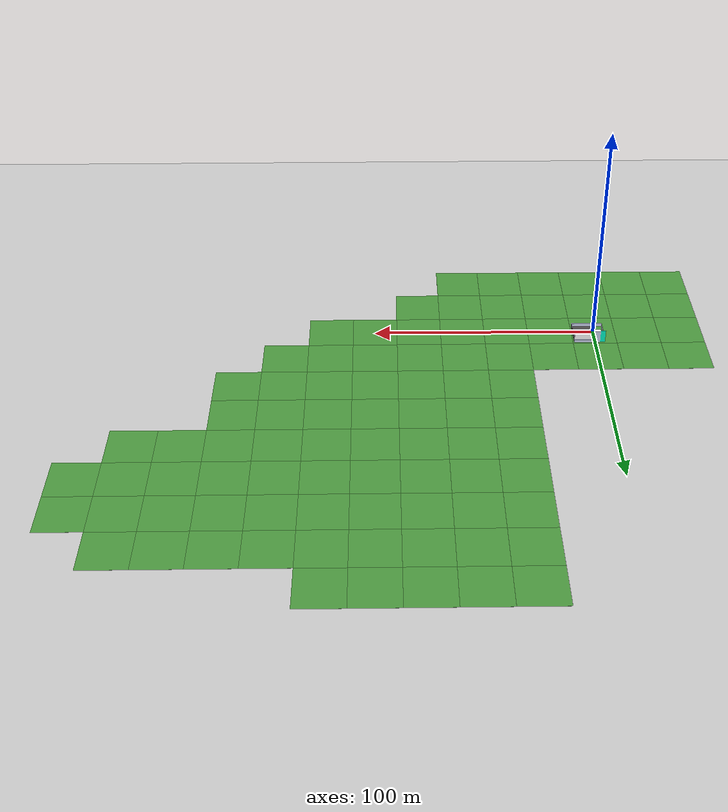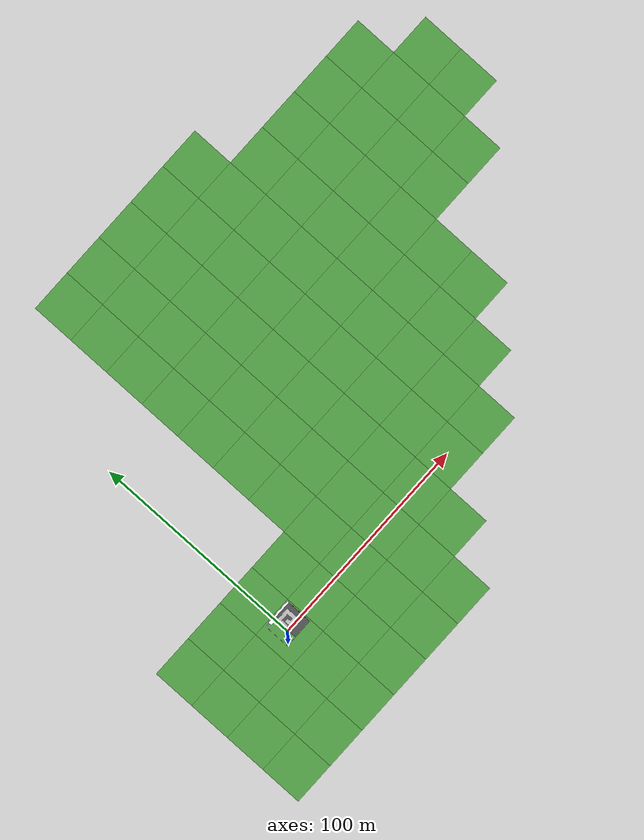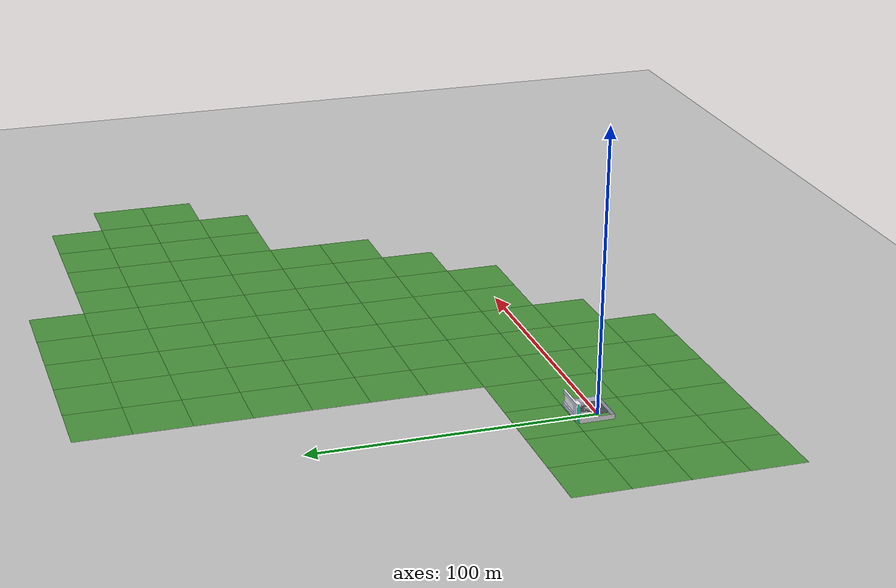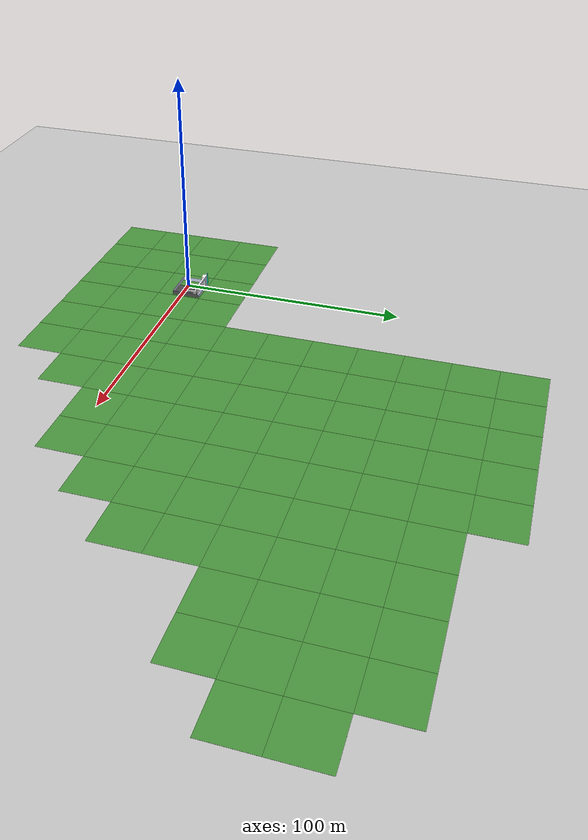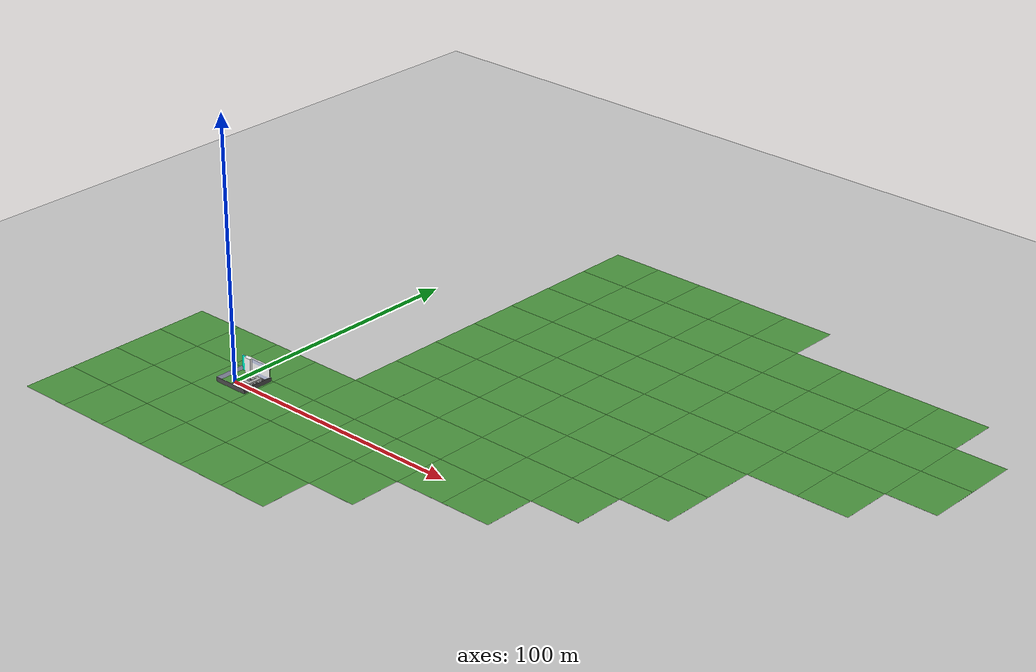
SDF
<?xml version="1.0" ?>
<sdf version="1.4">

  <world name="default">
    <scene>
	<sky>
	  <clouds>
	    <speed>12</speed>
	  </clouds>
	</sky>
    </scene>

    <include>
      <uri>model://ground_plane</uri>
    </include>

    <include>
      <uri>model://grass_plane</uri>
      <name>grass_plane_0_0</name>
      <pose>0 -1 0   0 0 0</pose>
    </include>

    <!-- Global light source -->
    <include>
      <uri>model://sun</uri>
    </include>
    <include>
            <uri>model://field_description</uri>
    </include>
  </world>
</sdf>

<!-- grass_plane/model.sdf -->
<sdf version='1.4'>
  <model name='grass_plane'>
    <static>true</static>
    <link name='link'>
      <collision name='collision'>
        <geometry>
          <plane>
            <normal>0 0 1</normal>
            <size>500 500</size>
          </plane>
        </geometry>
        <surface>
          <friction>
            <ode>
              <mu>0.5</mu>
              <mu2>.5</mu2>
            </ode>
          </friction>
        </surface>
      </collision>

      <visual name='visual_0'>
        <pose>-40 -40 0 0 0 0</pose>

        <cast_shadows>false</cast_shadows>
        <geometry>
          <plane>
            <normal>0 0 1</normal>
            <size>20 20</size>
          </plane>
        </geometry>
        <material>
          <script>
            <uri>model://../model_source/models/grass_plane/materials/scripts</uri>
            <uri>model://../model_source/models/grass_plane/materials/textures</uri>
            <name>vrc/grass</name>
          </script>
        </material>
      </visual>

      <visual name='visual_1'>
        <pose>-20 -40 0 0 0 0</pose>

        <cast_shadows>false</cast_shadows>
        <geometry>
          <plane>
            <normal>0 0 1</normal>
            <size>20 20</size>
          </plane>
        </geometry>
        <material>
          <script>
            <uri>model://../model_source/models/grass_plane/materials/scripts</uri>
            <uri>model://../model_source/models/grass_plane/materials/textures</uri>
            <name>vrc/grass</name>
          </script>
        </material>
      </visual>

      <visual name='visual_2'>
        <pose>0 -40 0 0 0 0</pose>

        <cast_shadows>false</cast_shadows>
        <geometry>
          <plane>
            <normal>0 0 1</normal>
            <size>20 20</size>
          </plane>
        </geometry>
        <material>
          <script>
            <uri>model://../model_source/models/grass_plane/materials/scripts</uri>
            <uri>model://../model_source/models/grass_plane/materials/textures</uri>
            <name>vrc/grass</name>
          </script>
        </material>
      </visual>

      <visual name='visual_3'>
        <pose>20 -40 0 0 0 0</pose>

        <cast_shadows>false</cast_shadows>
        <geometry>
          <plane>
            <normal>0 0 1</normal>
            <size>20 20</size>
          </plane>
        </geometry>
        <material>
          <script>
            <uri>model://../model_source/models/grass_plane/materials/scripts</uri>
            <uri>model://../model_source/models/grass_plane/materials/textures</uri>
            <name>vrc/grass</name>
          </script>
        </material>
      </visual>

      <visual name='visual_4'>
        <pose>40 -40 0 0 0 0</pose>

        <cast_shadows>false</cast_shadows>
        <geometry>
          <plane>
            <normal>0 0 1</normal>
            <size>20 20</size>
          </plane>
        </geometry>
        <material>
          <script>
            <uri>model://../model_source/models/grass_plane/materials/scripts</uri>
            <uri>model://../model_source/models/grass_plane/materials/textures</uri>
            <name>vrc/grass</name>
          </script>
        </material>
      </visual>

      <visual name='visual_5'>
        <pose>60 -40 0 0 0 0</pose>

        <cast_shadows>false</cast_shadows>
        <geometry>
          <plane>
            <normal>0 0 1</normal>
            <size>20 20</size>
          </plane>
        </geometry>
        <material>
          <script>
            <uri>model://../model_source/models/grass_plane/materials/scripts</uri>
            <uri>model://../model_source/models/grass_plane/materials/textures</uri>
            <name>vrc/grass</name>
          </script>
        </material>
      </visual>

      <visual name='visual_6'>
        <pose>-40 -20 0 0 0 0</pose>

        <cast_shadows>false</cast_shadows>
        <geometry>
          <plane>
            <normal>0 0 1</normal>
            <size>20 20</size>
          </plane>
        </geometry>
        <material>
          <script>
            <uri>model://../model_source/models/grass_plane/materials/scripts</uri>
            <uri>model://../model_source/models/grass_plane/materials/textures</uri>
            <name>vrc/grass</name>
          </script>
        </material>
      </visual>

      <visual name='visual_7'>
        <pose>-20 -20 0 0 0 0</pose>

        <cast_shadows>false</cast_shadows>
        <geometry>
          <plane>
            <normal>0 0 1</normal>
            <size>20 20</size>
          </plane>
        </geometry>
        <material>
          <script>
            <uri>model://../model_source/models/grass_plane/materials/scripts</uri>
            <uri>model://../model_source/models/grass_plane/materials/textures</uri>
            <name>vrc/grass</name>
          </script>
        </material>
      </visual>

      <visual name='visual_8'>
        <pose>0 -20 0 0 0 0</pose>

        <cast_shadows>false</cast_shadows>
        <geometry>
          <plane>
            <normal>0 0 1</normal>
            <size>20 20</size>
          </plane>
        </geometry>
        <material>
          <script>
            <uri>model://../model_source/models/grass_plane/materials/scripts</uri>
            <uri>model://../model_source/models/grass_plane/materials/textures</uri>
            <name>vrc/grass</name>
          </script>
        </material>
      </visual>

      <visual name='visual_9'>
        <pose>20 -20 0 0 0 0</pose>

        <cast_shadows>false</cast_shadows>
        <geometry>
          <plane>
            <normal>0 0 1</normal>
            <size>20 20</size>
          </plane>
        </geometry>
        <material>
          <script>
            <uri>model://../model_source/models/grass_plane/materials/scripts</uri>
            <uri>model://../model_source/models/grass_plane/materials/textures</uri>
            <name>vrc/grass</name>
          </script>
        </material>
      </visual>

      <visual name='visual_10'>
        <pose>40 -20 0 0 0 0</pose>

        <cast_shadows>false</cast_shadows>
        <geometry>
          <plane>
            <normal>0 0 1</normal>
            <size>20 20</size>
          </plane>
        </geometry>
        <material>
          <script>
            <uri>model://../model_source/models/grass_plane/materials/scripts</uri>
            <uri>model://../model_source/models/grass_plane/materials/textures</uri>
            <name>vrc/grass</name>
          </script>
        </material>
      </visual>

      <visual name='visual_11'>
        <pose>60 -20 0 0 0 0</pose>

        <cast_shadows>false</cast_shadows>
        <geometry>
          <plane>
            <normal>0 0 1</normal>
            <size>20 20</size>
          </plane>
        </geometry>
        <material>
          <script>
            <uri>model://../model_source/models/grass_plane/materials/scripts</uri>
            <uri>model://../model_source/models/grass_plane/materials/textures</uri>
            <name>vrc/grass</name>
          </script>
        </material>
      </visual>

      <visual name='visual_12'>
        <pose>80 -20 0 0 0 0</pose>

        <cast_shadows>false</cast_shadows>
        <geometry>
          <plane>
            <normal>0 0 1</normal>
            <size>20 20</size>
          </plane>
        </geometry>
        <material>
          <script>
            <uri>model://../model_source/models/grass_plane/materials/scripts</uri>
            <uri>model://../model_source/models/grass_plane/materials/textures</uri>
            <name>vrc/grass</name>
          </script>
        </material>
      </visual>

      <visual name='visual_13'>
        <pose>-40 0 0 0 0 0</pose>

        <cast_shadows>false</cast_shadows>
        <geometry>
          <plane>
            <normal>0 0 1</normal>
            <size>20 20</size>
          </plane>
        </geometry>
        <material>
          <script>
            <uri>model://../model_source/models/grass_plane/materials/scripts</uri>
            <uri>model://../model_source/models/grass_plane/materials/textures</uri>
            <name>vrc/grass</name>
          </script>
        </material>
      </visual>

      <visual name='visual_14'>
        <pose>-20 0 0 0 0 0</pose>

        <cast_shadows>false</cast_shadows>
        <geometry>
          <plane>
            <normal>0 0 1</normal>
            <size>20 20</size>
          </plane>
        </geometry>
        <material>
          <script>
            <uri>model://../model_source/models/grass_plane/materials/scripts</uri>
            <uri>model://../model_source/models/grass_plane/materials/textures</uri>
            <name>vrc/grass</name>
          </script>
        </material>
      </visual>

      <visual name='visual_15'>
        <pose>0 0 0 0 0 0</pose>

        <cast_shadows>false</cast_shadows>
        <geometry>
          <plane>
            <normal>0 0 1</normal>
            <size>20 20</size>
          </plane>
        </geometry>
        <material>
          <script>
            <uri>model://../model_source/models/grass_plane/materials/scripts</uri>
            <uri>model://../model_source/models/grass_plane/materials/textures</uri>
            <name>vrc/grass</name>
          </script>
        </material>
      </visual>

      <visual name='visual_16'>
        <pose>20 0 0 0 0 0</pose>

        <cast_shadows>false</cast_shadows>
        <geometry>
          <plane>
            <normal>0 0 1</normal>
            <size>20 20</size>
          </plane>
        </geometry>
        <material>
          <script>
            <uri>model://../model_source/models/grass_plane/materials/scripts</uri>
            <uri>model://../model_source/models/grass_plane/materials/textures</uri>
            <name>vrc/grass</name>
          </script>
        </material>
      </visual>

      <visual name='visual_17'>
        <pose>40 0 0 0 0 0</pose>

        <cast_shadows>false</cast_shadows>
        <geometry>
          <plane>
            <normal>0 0 1</normal>
            <size>20 20</size>
          </plane>
        </geometry>
        <material>
          <script>
            <uri>model://../model_source/models/grass_plane/materials/scripts</uri>
            <uri>model://../model_source/models/grass_plane/materials/textures</uri>
            <name>vrc/grass</name>
          </script>
        </material>
      </visual>

      <visual name='visual_18'>
        <pose>60 0 0 0 0 0</pose>

        <cast_shadows>false</cast_shadows>
        <geometry>
          <plane>
            <normal>0 0 1</normal>
            <size>20 20</size>
          </plane>
        </geometry>
        <material>
          <script>
            <uri>model://../model_source/models/grass_plane/materials/scripts</uri>
            <uri>model://../model_source/models/grass_plane/materials/textures</uri>
            <name>vrc/grass</name>
          </script>
        </material>
      </visual>

      <visual name='visual_19'>
        <pose>80 0 0 0 0 0</pose>

        <cast_shadows>false</cast_shadows>
        <geometry>
          <plane>
            <normal>0 0 1</normal>
            <size>20 20</size>
          </plane>
        </geometry>
        <material>
          <script>
            <uri>model://../model_source/models/grass_plane/materials/scripts</uri>
            <uri>model://../model_source/models/grass_plane/materials/textures</uri>
            <name>vrc/grass</name>
          </script>
        </material>
      </visual>

      <visual name='visual_20'>
        <pose>100 0 0 0 0 0</pose>

        <cast_shadows>false</cast_shadows>
        <geometry>
          <plane>
            <normal>0 0 1</normal>
            <size>20 20</size>
          </plane>
        </geometry>
        <material>
          <script>
            <uri>model://../model_source/models/grass_plane/materials/scripts</uri>
            <uri>model://../model_source/models/grass_plane/materials/textures</uri>
            <name>vrc/grass</name>
          </script>
        </material>
      </visual>

      <visual name='visual_21'>
        <pose>120 0 0 0 0 0</pose>

        <cast_shadows>false</cast_shadows>
        <geometry>
          <plane>
            <normal>0 0 1</normal>
            <size>20 20</size>
          </plane>
        </geometry>
        <material>
          <script>
            <uri>model://../model_source/models/grass_plane/materials/scripts</uri>
            <uri>model://../model_source/models/grass_plane/materials/textures</uri>
            <name>vrc/grass</name>
          </script>
        </material>
      </visual>

      <visual name='visual_22'>
        <pose>-40 20 0 0 0 0</pose>

        <cast_shadows>false</cast_shadows>
        <geometry>
          <plane>
            <normal>0 0 1</normal>
            <size>20 20</size>
          </plane>
        </geometry>
        <material>
          <script>
            <uri>model://../model_source/models/grass_plane/materials/scripts</uri>
            <uri>model://../model_source/models/grass_plane/materials/textures</uri>
            <name>vrc/grass</name>
          </script>
        </material>
      </visual>

      <visual name='visual_23'>
        <pose>-20 20 0 0 0 0</pose>

        <cast_shadows>false</cast_shadows>
        <geometry>
          <plane>
            <normal>0 0 1</normal>
            <size>20 20</size>
          </plane>
        </geometry>
        <material>
          <script>
            <uri>model://../model_source/models/grass_plane/materials/scripts</uri>
            <uri>model://../model_source/models/grass_plane/materials/textures</uri>
            <name>vrc/grass</name>
          </script>
        </material>
      </visual>

      <visual name='visual_24'>
        <pose>0 20 0 0 0 0</pose>

        <cast_shadows>false</cast_shadows>
        <geometry>
          <plane>
            <normal>0 0 1</normal>
            <size>20 20</size>
          </plane>
        </geometry>
        <material>
          <script>
            <uri>model://../model_source/models/grass_plane/materials/scripts</uri>
            <uri>model://../model_source/models/grass_plane/materials/textures</uri>
            <name>vrc/grass</name>
          </script>
        </material>
      </visual>

      <visual name='visual_25'>
        <pose>20 20 0 0 0 0</pose>

        <cast_shadows>false</cast_shadows>
        <geometry>
          <plane>
            <normal>0 0 1</normal>
            <size>20 20</size>
          </plane>
        </geometry>
        <material>
          <script>
            <uri>model://../model_source/models/grass_plane/materials/scripts</uri>
            <uri>model://../model_source/models/grass_plane/materials/textures</uri>
            <name>vrc/grass</name>
          </script>
        </material>
      </visual>

      <visual name='visual_26'>
        <pose>40 20 0 0 0 0</pose>

        <cast_shadows>false</cast_shadows>
        <geometry>
          <plane>
            <normal>0 0 1</normal>
            <size>20 20</size>
          </plane>
        </geometry>
        <material>
          <script>
            <uri>model://../model_source/models/grass_plane/materials/scripts</uri>
            <uri>model://../model_source/models/grass_plane/materials/textures</uri>
            <name>vrc/grass</name>
          </script>
        </material>
      </visual>

      <visual name='visual_27'>
        <pose>60 20 0 0 0 0</pose>

        <cast_shadows>false</cast_shadows>
        <geometry>
          <plane>
            <normal>0 0 1</normal>
            <size>20 20</size>
          </plane>
        </geometry>
        <material>
          <script>
            <uri>model://../model_source/models/grass_plane/materials/scripts</uri>
            <uri>model://../model_source/models/grass_plane/materials/textures</uri>
            <name>vrc/grass</name>
          </script>
        </material>
      </visual>

      <visual name='visual_28'>
        <pose>80 20 0 0 0 0</pose>

        <cast_shadows>false</cast_shadows>
        <geometry>
          <plane>
            <normal>0 0 1</normal>
            <size>20 20</size>
          </plane>
        </geometry>
        <material>
          <script>
            <uri>model://../model_source/models/grass_plane/materials/scripts</uri>
            <uri>model://../model_source/models/grass_plane/materials/textures</uri>
            <name>vrc/grass</name>
          </script>
        </material>
      </visual>

      <visual name='visual_29'>
        <pose>100 20 0 0 0 0</pose>

        <cast_shadows>false</cast_shadows>
        <geometry>
          <plane>
            <normal>0 0 1</normal>
            <size>20 20</size>
          </plane>
        </geometry>
        <material>
          <script>
            <uri>model://../model_source/models/grass_plane/materials/scripts</uri>
            <uri>model://../model_source/models/grass_plane/materials/textures</uri>
            <name>vrc/grass</name>
          </script>
        </material>
      </visual>

      <visual name='visual_30'>
        <pose>120 20 0 0 0 0</pose>

        <cast_shadows>false</cast_shadows>
        <geometry>
          <plane>
            <normal>0 0 1</normal>
            <size>20 20</size>
          </plane>
        </geometry>
        <material>
          <script>
            <uri>model://../model_source/models/grass_plane/materials/scripts</uri>
            <uri>model://../model_source/models/grass_plane/materials/textures</uri>
            <name>vrc/grass</name>
          </script>
        </material>
      </visual>

      <visual name='visual_31'>
        <pose>140 20 0 0 0 0</pose>

        <cast_shadows>false</cast_shadows>
        <geometry>
          <plane>
            <normal>0 0 1</normal>
            <size>20 20</size>
          </plane>
        </geometry>
        <material>
          <script>
            <uri>model://../model_source/models/grass_plane/materials/scripts</uri>
            <uri>model://../model_source/models/grass_plane/materials/textures</uri>
            <name>vrc/grass</name>
          </script>
        </material>
      </visual>

      <visual name='visual_32'>
        <pose>40 40 0 0 0 0</pose>

        <cast_shadows>false</cast_shadows>
        <geometry>
          <plane>
            <normal>0 0 1</normal>
            <size>20 20</size>
          </plane>
        </geometry>
        <material>
          <script>
            <uri>model://../model_source/models/grass_plane/materials/scripts</uri>
            <uri>model://../model_source/models/grass_plane/materials/textures</uri>
            <name>vrc/grass</name>
          </script>
        </material>
      </visual>

      <visual name='visual_33'>
        <pose>60 40 0 0 0 0</pose>

        <cast_shadows>false</cast_shadows>
        <geometry>
          <plane>
            <normal>0 0 1</normal>
            <size>20 20</size>
          </plane>
        </geometry>
        <material>
          <script>
            <uri>model://../model_source/models/grass_plane/materials/scripts</uri>
            <uri>model://../model_source/models/grass_plane/materials/textures</uri>
            <name>vrc/grass</name>
          </script>
        </material>
      </visual>

      <visual name='visual_34'>
        <pose>80 40 0 0 0 0</pose>

        <cast_shadows>false</cast_shadows>
        <geometry>
          <plane>
            <normal>0 0 1</normal>
            <size>20 20</size>
          </plane>
        </geometry>
        <material>
          <script>
            <uri>model://../model_source/models/grass_plane/materials/scripts</uri>
            <uri>model://../model_source/models/grass_plane/materials/textures</uri>
            <name>vrc/grass</name>
          </script>
        </material>
      </visual>

      <visual name='visual_35'>
        <pose>100 40 0 0 0 0</pose>

        <cast_shadows>false</cast_shadows>
        <geometry>
          <plane>
            <normal>0 0 1</normal>
            <size>20 20</size>
          </plane>
        </geometry>
        <material>
          <script>
            <uri>model://../model_source/models/grass_plane/materials/scripts</uri>
            <uri>model://../model_source/models/grass_plane/materials/textures</uri>
            <name>vrc/grass</name>
          </script>
        </material>
      </visual>

      <visual name='visual_36'>
        <pose>120 40 0 0 0 0</pose>

        <cast_shadows>false</cast_shadows>
        <geometry>
          <plane>
            <normal>0 0 1</normal>
            <size>20 20</size>
          </plane>
        </geometry>
        <material>
          <script>
            <uri>model://../model_source/models/grass_plane/materials/scripts</uri>
            <uri>model://../model_source/models/grass_plane/materials/textures</uri>
            <name>vrc/grass</name>
          </script>
        </material>
      </visual>

      <visual name='visual_37'>
        <pose>140 40 0 0 0 0</pose>

        <cast_shadows>false</cast_shadows>
        <geometry>
          <plane>
            <normal>0 0 1</normal>
            <size>20 20</size>
          </plane>
        </geometry>
        <material>
          <script>
            <uri>model://../model_source/models/grass_plane/materials/scripts</uri>
            <uri>model://../model_source/models/grass_plane/materials/textures</uri>
            <name>vrc/grass</name>
          </script>
        </material>
      </visual>

      <visual name='visual_38'>
        <pose>160 40 0 0 0 0</pose>

        <cast_shadows>false</cast_shadows>
        <geometry>
          <plane>
            <normal>0 0 1</normal>
            <size>20 20</size>
          </plane>
        </geometry>
        <material>
          <script>
            <uri>model://../model_source/models/grass_plane/materials/scripts</uri>
            <uri>model://../model_source/models/grass_plane/materials/textures</uri>
            <name>vrc/grass</name>
          </script>
        </material>
      </visual>

      <visual name='visual_39'>
        <pose>40 60 0 0 0 0</pose>

        <cast_shadows>false</cast_shadows>
        <geometry>
          <plane>
            <normal>0 0 1</normal>
            <size>20 20</size>
          </plane>
        </geometry>
        <material>
          <script>
            <uri>model://../model_source/models/grass_plane/materials/scripts</uri>
            <uri>model://../model_source/models/grass_plane/materials/textures</uri>
            <name>vrc/grass</name>
          </script>
        </material>
      </visual>

      <visual name='visual_40'>
        <pose>60 60 0 0 0 0</pose>

        <cast_shadows>false</cast_shadows>
        <geometry>
          <plane>
            <normal>0 0 1</normal>
            <size>20 20</size>
          </plane>
        </geometry>
        <material>
          <script>
            <uri>model://../model_source/models/grass_plane/materials/scripts</uri>
            <uri>model://../model_source/models/grass_plane/materials/textures</uri>
            <name>vrc/grass</name>
          </script>
        </material>
      </visual>

      <visual name='visual_41'>
        <pose>80 60 0 0 0 0</pose>

        <cast_shadows>false</cast_shadows>
        <geometry>
          <plane>
            <normal>0 0 1</normal>
            <size>20 20</size>
          </plane>
        </geometry>
        <material>
          <script>
            <uri>model://../model_source/models/grass_plane/materials/scripts</uri>
            <uri>model://../model_source/models/grass_plane/materials/textures</uri>
            <name>vrc/grass</name>
          </script>
        </material>
      </visual>

      <visual name='visual_42'>
        <pose>100 60 0 0 0 0</pose>

        <cast_shadows>false</cast_shadows>
        <geometry>
          <plane>
            <normal>0 0 1</normal>
            <size>20 20</size>
          </plane>
        </geometry>
        <material>
          <script>
            <uri>model://../model_source/models/grass_plane/materials/scripts</uri>
            <uri>model://../model_source/models/grass_plane/materials/textures</uri>
            <name>vrc/grass</name>
          </script>
        </material>
      </visual>

      <visual name='visual_43'>
        <pose>120 60 0 0 0 0</pose>

        <cast_shadows>false</cast_shadows>
        <geometry>
          <plane>
            <normal>0 0 1</normal>
            <size>20 20</size>
          </plane>
        </geometry>
        <material>
          <script>
            <uri>model://../model_source/models/grass_plane/materials/scripts</uri>
            <uri>model://../model_source/models/grass_plane/materials/textures</uri>
            <name>vrc/grass</name>
          </script>
        </material>
      </visual>

      <visual name='visual_44'>
        <pose>140 60 0 0 0 0</pose>

        <cast_shadows>false</cast_shadows>
        <geometry>
          <plane>
            <normal>0 0 1</normal>
            <size>20 20</size>
          </plane>
        </geometry>
        <material>
          <script>
            <uri>model://../model_source/models/grass_plane/materials/scripts</uri>
            <uri>model://../model_source/models/grass_plane/materials/textures</uri>
            <name>vrc/grass</name>
          </script>
        </material>
      </visual>

      <visual name='visual_45'>
        <pose>160 60 0 0 0 0</pose>

        <cast_shadows>false</cast_shadows>
        <geometry>
          <plane>
            <normal>0 0 1</normal>
            <size>20 20</size>
          </plane>
        </geometry>
        <material>
          <script>
            <uri>model://../model_source/models/grass_plane/materials/scripts</uri>
            <uri>model://../model_source/models/grass_plane/materials/textures</uri>
            <name>vrc/grass</name>
          </script>
        </material>
      </visual>

      <visual name='visual_46'>
        <pose>40 80 0 0 0 0</pose>

        <cast_shadows>false</cast_shadows>
        <geometry>
          <plane>
            <normal>0 0 1</normal>
            <size>20 20</size>
          </plane>
        </geometry>
        <material>
          <script>
            <uri>model://../model_source/models/grass_plane/materials/scripts</uri>
            <uri>model://../model_source/models/grass_plane/materials/textures</uri>
            <name>vrc/grass</name>
          </script>
        </material>
      </visual>

      <visual name='visual_47'>
        <pose>60 80 0 0 0 0</pose>

        <cast_shadows>false</cast_shadows>
        <geometry>
          <plane>
            <normal>0 0 1</normal>
            <size>20 20</size>
          </plane>
        </geometry>
        <material>
          <script>
            <uri>model://../model_source/models/grass_plane/materials/scripts</uri>
            <uri>model://../model_source/models/grass_plane/materials/textures</uri>
            <name>vrc/grass</name>
          </script>
        </material>
      </visual>

      <visual name='visual_48'>
        <pose>80 80 0 0 0 0</pose>

        <cast_shadows>false</cast_shadows>
        <geometry>
          <plane>
            <normal>0 0 1</normal>
            <size>20 20</size>
          </plane>
        </geometry>
        <material>
          <script>
            <uri>model://../model_source/models/grass_plane/materials/scripts</uri>
            <uri>model://../model_source/models/grass_plane/materials/textures</uri>
            <name>vrc/grass</name>
          </script>
        </material>
      </visual>

      <visual name='visual_49'>
        <pose>100 80 0 0 0 0</pose>

        <cast_shadows>false</cast_shadows>
        <geometry>
          <plane>
            <normal>0 0 1</normal>
            <size>20 20</size>
          </plane>
        </geometry>
        <material>
          <script>
            <uri>model://../model_source/models/grass_plane/materials/scripts</uri>
            <uri>model://../model_source/models/grass_plane/materials/textures</uri>
            <name>vrc/grass</name>
          </script>
        </material>
      </visual>

      <visual name='visual_50'>
        <pose>120 80 0 0 0 0</pose>

        <cast_shadows>false</cast_shadows>
        <geometry>
          <plane>
            <normal>0 0 1</normal>
            <size>20 20</size>
          </plane>
        </geometry>
        <material>
          <script>
            <uri>model://../model_source/models/grass_plane/materials/scripts</uri>
            <uri>model://../model_source/models/grass_plane/materials/textures</uri>
            <name>vrc/grass</name>
          </script>
        </material>
      </visual>

      <visual name='visual_51'>
        <pose>140 80 0 0 0 0</pose>

        <cast_shadows>false</cast_shadows>
        <geometry>
          <plane>
            <normal>0 0 1</normal>
            <size>20 20</size>
          </plane>
        </geometry>
        <material>
          <script>
            <uri>model://../model_source/models/grass_plane/materials/scripts</uri>
            <uri>model://../model_source/models/grass_plane/materials/textures</uri>
            <name>vrc/grass</name>
          </script>
        </material>
      </visual>

      <visual name='visual_52'>
        <pose>160 80 0 0 0 0</pose>

        <cast_shadows>false</cast_shadows>
        <geometry>
          <plane>
            <normal>0 0 1</normal>
            <size>20 20</size>
          </plane>
        </geometry>
        <material>
          <script>
            <uri>model://../model_source/models/grass_plane/materials/scripts</uri>
            <uri>model://../model_source/models/grass_plane/materials/textures</uri>
            <name>vrc/grass</name>
          </script>
        </material>
      </visual>

      <visual name='visual_53'>
        <pose>180 80 0 0 0 0</pose>

        <cast_shadows>false</cast_shadows>
        <geometry>
          <plane>
            <normal>0 0 1</normal>
            <size>20 20</size>
          </plane>
        </geometry>
        <material>
          <script>
            <uri>model://../model_source/models/grass_plane/materials/scripts</uri>
            <uri>model://../model_source/models/grass_plane/materials/textures</uri>
            <name>vrc/grass</name>
          </script>
        </material>
      </visual>

      <visual name='visual_54'>
        <pose>200 80 0 0 0 0</pose>

        <cast_shadows>false</cast_shadows>
        <geometry>
          <plane>
            <normal>0 0 1</normal>
            <size>20 20</size>
          </plane>
        </geometry>
        <material>
          <script>
            <uri>model://../model_source/models/grass_plane/materials/scripts</uri>
            <uri>model://../model_source/models/grass_plane/materials/textures</uri>
            <name>vrc/grass</name>
          </script>
        </material>
      </visual>

      <visual name='visual_55'>
        <pose>40 100 0 0 0 0</pose>

        <cast_shadows>false</cast_shadows>
        <geometry>
          <plane>
            <normal>0 0 1</normal>
            <size>20 20</size>
          </plane>
        </geometry>
        <material>
          <script>
            <uri>model://../model_source/models/grass_plane/materials/scripts</uri>
            <uri>model://../model_source/models/grass_plane/materials/textures</uri>
            <name>vrc/grass</name>
          </script>
        </material>
      </visual>

      <visual name='visual_56'>
        <pose>60 100 0 0 0 0</pose>

        <cast_shadows>false</cast_shadows>
        <geometry>
          <plane>
            <normal>0 0 1</normal>
            <size>20 20</size>
          </plane>
        </geometry>
        <material>
          <script>
            <uri>model://../model_source/models/grass_plane/materials/scripts</uri>
            <uri>model://../model_source/models/grass_plane/materials/textures</uri>
            <name>vrc/grass</name>
          </script>
        </material>
      </visual>

      <visual name='visual_57'>
        <pose>80 100 0 0 0 0</pose>

        <cast_shadows>false</cast_shadows>
        <geometry>
          <plane>
            <normal>0 0 1</normal>
            <size>20 20</size>
          </plane>
        </geometry>
        <material>
          <script>
            <uri>model://../model_source/models/grass_plane/materials/scripts</uri>
            <uri>model://../model_source/models/grass_plane/materials/textures</uri>
            <name>vrc/grass</name>
          </script>
        </material>
      </visual>

      <visual name='visual_58'>
        <pose>100 100 0 0 0 0</pose>

        <cast_shadows>false</cast_shadows>
        <geometry>
          <plane>
            <normal>0 0 1</normal>
            <size>20 20</size>
          </plane>
        </geometry>
        <material>
          <script>
            <uri>model://../model_source/models/grass_plane/materials/scripts</uri>
            <uri>model://../model_source/models/grass_plane/materials/textures</uri>
            <name>vrc/grass</name>
          </script>
        </material>
      </visual>

      <visual name='visual_59'>
        <pose>120 100 0 0 0 0</pose>

        <cast_shadows>false</cast_shadows>
        <geometry>
          <plane>
            <normal>0 0 1</normal>
            <size>20 20</size>
          </plane>
        </geometry>
        <material>
          <script>
            <uri>model://../model_source/models/grass_plane/materials/scripts</uri>
            <uri>model://../model_source/models/grass_plane/materials/textures</uri>
            <name>vrc/grass</name>
          </script>
        </material>
      </visual>

      <visual name='visual_60'>
        <pose>140 100 0 0 0 0</pose>

        <cast_shadows>false</cast_shadows>
        <geometry>
          <plane>
            <normal>0 0 1</normal>
            <size>20 20</size>
          </plane>
        </geometry>
        <material>
          <script>
            <uri>model://../model_source/models/grass_plane/materials/scripts</uri>
            <uri>model://../model_source/models/grass_plane/materials/textures</uri>
            <name>vrc/grass</name>
          </script>
        </material>
      </visual>

      <visual name='visual_61'>
        <pose>160 100 0 0 0 0</pose>

        <cast_shadows>false</cast_shadows>
        <geometry>
          <plane>
            <normal>0 0 1</normal>
            <size>20 20</size>
          </plane>
        </geometry>
        <material>
          <script>
            <uri>model://../model_source/models/grass_plane/materials/scripts</uri>
            <uri>model://../model_source/models/grass_plane/materials/textures</uri>
            <name>vrc/grass</name>
          </script>
        </material>
      </visual>

      <visual name='visual_62'>
        <pose>180 100 0 0 0 0</pose>

        <cast_shadows>false</cast_shadows>
        <geometry>
          <plane>
            <normal>0 0 1</normal>
            <size>20 20</size>
          </plane>
        </geometry>
        <material>
          <script>
            <uri>model://../model_source/models/grass_plane/materials/scripts</uri>
            <uri>model://../model_source/models/grass_plane/materials/textures</uri>
            <name>vrc/grass</name>
          </script>
        </material>
      </visual>

      <visual name='visual_63'>
        <pose>200 100 0 0 0 0</pose>

        <cast_shadows>false</cast_shadows>
        <geometry>
          <plane>
            <normal>0 0 1</normal>
            <size>20 20</size>
          </plane>
        </geometry>
        <material>
          <script>
            <uri>model://../model_source/models/grass_plane/materials/scripts</uri>
            <uri>model://../model_source/models/grass_plane/materials/textures</uri>
            <name>vrc/grass</name>
          </script>
        </material>
      </visual>

      <visual name='visual_63a'>
        <pose>220 100 0 0 0 0</pose>

        <cast_shadows>false</cast_shadows>
        <geometry>
          <plane>
            <normal>0 0 1</normal>
            <size>20 20</size>
          </plane>
        </geometry>
        <material>
          <script>
            <uri>model://../model_source/models/grass_plane/materials/scripts</uri>
            <uri>model://../model_source/models/grass_plane/materials/textures</uri>
            <name>vrc/grass</name>
          </script>
        </material>
      </visual>

      <visual name='visual_64'>
        <pose>40 120 0 0 0 0</pose>

        <cast_shadows>false</cast_shadows>
        <geometry>
          <plane>
            <normal>0 0 1</normal>
            <size>20 20</size>
          </plane>
        </geometry>
        <material>
          <script>
            <uri>model://../model_source/models/grass_plane/materials/scripts</uri>
            <uri>model://../model_source/models/grass_plane/materials/textures</uri>
            <name>vrc/grass</name>
          </script>
        </material>
      </visual>

      <visual name='visual_65'>
        <pose>60 120 0 0 0 0</pose>

        <cast_shadows>false</cast_shadows>
        <geometry>
          <plane>
            <normal>0 0 1</normal>
            <size>20 20</size>
          </plane>
        </geometry>
        <material>
          <script>
            <uri>model://../model_source/models/grass_plane/materials/scripts</uri>
            <uri>model://../model_source/models/grass_plane/materials/textures</uri>
            <name>vrc/grass</name>
          </script>
        </material>
      </visual>

      <visual name='visual_66'>
        <pose>80 120 0 0 0 0</pose>

        <cast_shadows>false</cast_shadows>
        <geometry>
          <plane>
            <normal>0 0 1</normal>
            <size>20 20</size>
          </plane>
        </geometry>
        <material>
          <script>
            <uri>model://../model_source/models/grass_plane/materials/scripts</uri>
            <uri>model://../model_source/models/grass_plane/materials/textures</uri>
            <name>vrc/grass</name>
          </script>
        </material>
      </visual>

      <visual name='visual_67'>
        <pose>100 120 0 0 0 0</pose>

        <cast_shadows>false</cast_shadows>
        <geometry>
          <plane>
            <normal>0 0 1</normal>
            <size>20 20</size>
          </plane>
        </geometry>
        <material>
          <script>
            <uri>model://../model_source/models/grass_plane/materials/scripts</uri>
            <uri>model://../model_source/models/grass_plane/materials/textures</uri>
            <name>vrc/grass</name>
          </script>
        </material>
      </visual>

      <visual name='visual_68'>
        <pose>120 120 0 0 0 0</pose>

        <cast_shadows>false</cast_shadows>
        <geometry>
          <plane>
            <normal>0 0 1</normal>
            <size>20 20</size>
          </plane>
        </geometry>
        <material>
          <script>
            <uri>model://../model_source/models/grass_plane/materials/scripts</uri>
            <uri>model://../model_source/models/grass_plane/materials/textures</uri>
            <name>vrc/grass</name>
          </script>
        </material>
      </visual>

      <visual name='visual_69'>
        <pose>140 120 0 0 0 0</pose>

        <cast_shadows>false</cast_shadows>
        <geometry>
          <plane>
            <normal>0 0 1</normal>
            <size>20 20</size>
          </plane>
        </geometry>
        <material>
          <script>
            <uri>model://../model_source/models/grass_plane/materials/scripts</uri>
            <uri>model://../model_source/models/grass_plane/materials/textures</uri>
            <name>vrc/grass</name>
          </script>
        </material>
      </visual>

      <visual name='visual_70'>
        <pose>160 120 0 0 0 0</pose>

        <cast_shadows>false</cast_shadows>
        <geometry>
          <plane>
            <normal>0 0 1</normal>
            <size>20 20</size>
          </plane>
        </geometry>
        <material>
          <script>
            <uri>model://../model_source/models/grass_plane/materials/scripts</uri>
            <uri>model://../model_source/models/grass_plane/materials/textures</uri>
            <name>vrc/grass</name>
          </script>
        </material>
      </visual>

      <visual name='visual_71'>
        <pose>180 120 0 0 0 0</pose>

        <cast_shadows>false</cast_shadows>
        <geometry>
          <plane>
            <normal>0 0 1</normal>
            <size>20 20</size>
          </plane>
        </geometry>
        <material>
          <script>
            <uri>model://../model_source/models/grass_plane/materials/scripts</uri>
            <uri>model://../model_source/models/grass_plane/materials/textures</uri>
            <name>vrc/grass</name>
          </script>
        </material>
      </visual>

      <visual name='visual_72'>
        <pose>200 120 0 0 0 0</pose>

        <cast_shadows>false</cast_shadows>
        <geometry>
          <plane>
            <normal>0 0 1</normal>
            <size>20 20</size>
          </plane>
        </geometry>
        <material>
          <script>
            <uri>model://../model_source/models/grass_plane/materials/scripts</uri>
            <uri>model://../model_source/models/grass_plane/materials/textures</uri>
            <name>vrc/grass</name>
          </script>
        </material>
      </visual>

      <visual name='visual_72a'>
        <pose>220 120 0 0 0 0</pose>

        <cast_shadows>false</cast_shadows>
        <geometry>
          <plane>
            <normal>0 0 1</normal>
            <size>20 20</size>
          </plane>
        </geometry>
        <material>
          <script>
            <uri>model://../model_source/models/grass_plane/materials/scripts</uri>
            <uri>model://../model_source/models/grass_plane/materials/textures</uri>
            <name>vrc/grass</name>
          </script>
        </material>
      </visual>

      <visual name='visual_73'>
        <pose>40 140 0 0 0 0</pose>

        <cast_shadows>false</cast_shadows>
        <geometry>
          <plane>
            <normal>0 0 1</normal>
            <size>20 20</size>
          </plane>
        </geometry>
        <material>
          <script>
            <uri>model://../model_source/models/grass_plane/materials/scripts</uri>
            <uri>model://../model_source/models/grass_plane/materials/textures</uri>
            <name>vrc/grass</name>
          </script>
        </material>
      </visual>

      <visual name='visual_74'>
        <pose>60 140 0 0 0 0</pose>

        <cast_shadows>false</cast_shadows>
        <geometry>
          <plane>
            <normal>0 0 1</normal>
            <size>20 20</size>
          </plane>
        </geometry>
        <material>
          <script>
            <uri>model://../model_source/models/grass_plane/materials/scripts</uri>
            <uri>model://../model_source/models/grass_plane/materials/textures</uri>
            <name>vrc/grass</name>
          </script>
        </material>
      </visual>

      <visual name='visual_75'>
        <pose>80 140 0 0 0 0</pose>

        <cast_shadows>false</cast_shadows>
        <geometry>
          <plane>
            <normal>0 0 1</normal>
            <size>20 20</size>
          </plane>
        </geometry>
        <material>
          <script>
            <uri>model://../model_source/models/grass_plane/materials/scripts</uri>
            <uri>model://../model_source/models/grass_plane/materials/textures</uri>
            <name>vrc/grass</name>
          </script>
        </material>
      </visual>

      <visual name='visual_76'>
        <pose>100 140 0 0 0 0</pose>

        <cast_shadows>false</cast_shadows>
        <geometry>
          <plane>
            <normal>0 0 1</normal>
            <size>20 20</size>
          </plane>
        </geometry>
        <material>
          <script>
            <uri>model://../model_source/models/grass_plane/materials/scripts</uri>
            <uri>model://../model_source/models/grass_plane/materials/textures</uri>
            <name>vrc/grass</name>
          </script>
        </material>
      </visual>

      <visual name='visual_77'>
        <pose>120 140 0 0 0 0</pose>

        <cast_shadows>false</cast_shadows>
        <geometry>
          <plane>
            <normal>0 0 1</normal>
            <size>20 20</size>
          </plane>
        </geometry>
        <material>
          <script>
            <uri>model://../model_source/models/grass_plane/materials/scripts</uri>
            <uri>model://../model_source/models/grass_plane/materials/textures</uri>
            <name>vrc/grass</name>
          </script>
        </material>
      </visual>

      <visual name='visual_78'>
        <pose>140 140 0 0 0 0</pose>

        <cast_shadows>false</cast_shadows>
        <geometry>
          <plane>
            <normal>0 0 1</normal>
            <size>20 20</size>
          </plane>
        </geometry>
        <material>
          <script>
            <uri>model://../model_source/models/grass_plane/materials/scripts</uri>
            <uri>model://../model_source/models/grass_plane/materials/textures</uri>
            <name>vrc/grass</name>
          </script>
        </material>
      </visual>

      <visual name='visual_79'>
        <pose>160 140 0 0 0 0</pose>

        <cast_shadows>false</cast_shadows>
        <geometry>
          <plane>
            <normal>0 0 1</normal>
            <size>20 20</size>
          </plane>
        </geometry>
        <material>
          <script>
            <uri>model://../model_source/models/grass_plane/materials/scripts</uri>
            <uri>model://../model_source/models/grass_plane/materials/textures</uri>
            <name>vrc/grass</name>
          </script>
        </material>
      </visual>

      <visual name='visual_80'>
        <pose>180 140 0 0 0 0</pose>

        <cast_shadows>false</cast_shadows>
        <geometry>
          <plane>
            <normal>0 0 1</normal>
            <size>20 20</size>
          </plane>
        </geometry>
        <material>
          <script>
            <uri>model://../model_source/models/grass_plane/materials/scripts</uri>
            <uri>model://../model_source/models/grass_plane/materials/textures</uri>
            <name>vrc/grass</name>
          </script>
        </material>
      </visual>

      <visual name='visual_81'>
        <pose>200 140 0 0 0 0</pose>

        <cast_shadows>false</cast_shadows>
        <geometry>
          <plane>
            <normal>0 0 1</normal>
            <size>20 20</size>
          </plane>
        </geometry>
        <material>
          <script>
            <uri>model://../model_source/models/grass_plane/materials/scripts</uri>
            <uri>model://../model_source/models/grass_plane/materials/textures</uri>
            <name>vrc/grass</name>
          </script>
        </material>
      </visual>

      <visual name='visual_82'>
        <pose>40 160 0 0 0 0</pose>

        <cast_shadows>false</cast_shadows>
        <geometry>
          <plane>
            <normal>0 0 1</normal>
            <size>20 20</size>
          </plane>
        </geometry>
        <material>
          <script>
            <uri>model://../model_source/models/grass_plane/materials/scripts</uri>
            <uri>model://../model_source/models/grass_plane/materials/textures</uri>
            <name>vrc/grass</name>
          </script>
        </material>
      </visual>

      <visual name='visual_83'>
        <pose>60 160 0 0 0 0</pose>

        <cast_shadows>false</cast_shadows>
        <geometry>
          <plane>
            <normal>0 0 1</normal>
            <size>20 20</size>
          </plane>
        </geometry>
        <material>
          <script>
            <uri>model://../model_source/models/grass_plane/materials/scripts</uri>
            <uri>model://../model_source/models/grass_plane/materials/textures</uri>
            <name>vrc/grass</name>
          </script>
        </material>
      </visual>

      <visual name='visual_84'>
        <pose>80 160 0 0 0 0</pose>

        <cast_shadows>false</cast_shadows>
        <geometry>
          <plane>
            <normal>0 0 1</normal>
            <size>20 20</size>
          </plane>
        </geometry>
        <material>
          <script>
            <uri>model://../model_source/models/grass_plane/materials/scripts</uri>
            <uri>model://../model_source/models/grass_plane/materials/textures</uri>
            <name>vrc/grass</name>
          </script>
        </material>
      </visual>

      <visual name='visual_85'>
        <pose>100 160 0 0 0 0</pose>

        <cast_shadows>false</cast_shadows>
        <geometry>
          <plane>
            <normal>0 0 1</normal>
            <size>20 20</size>
          </plane>
        </geometry>
        <material>
          <script>
            <uri>model://../model_source/models/grass_plane/materials/scripts</uri>
            <uri>model://../model_source/models/grass_plane/materials/textures</uri>
            <name>vrc/grass</name>
          </script>
        </material>
      </visual>

      <visual name='visual_86'>
        <pose>120 160 0 0 0 0</pose>

        <cast_shadows>false</cast_shadows>
        <geometry>
          <plane>
            <normal>0 0 1</normal>
            <size>20 20</size>
          </plane>
        </geometry>
        <material>
          <script>
            <uri>model://../model_source/models/grass_plane/materials/scripts</uri>
            <uri>model://../model_source/models/grass_plane/materials/textures</uri>
            <name>vrc/grass</name>
          </script>
        </material>
      </visual>
    </link>
  </model>
</sdf>

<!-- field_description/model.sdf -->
<sdf version='1.9'>
  <model name='field_description'>
    <link name='base_link'>
      <inertial>
        <pose>0.500814010947333 -0.0392166317902097 -1.91270871235796 0 0 0</pose>
        <mass>13268.446324432</mass>
        <inertia>
          <ixx>36441.0637179572</ixx>
          <ixy>2153.9131365732601</ixy>
          <ixz>-1072.5221454924699</ixz>
          <iyy>61148.603361855901</iyy>
          <iyz>6731.7855539970997</iyz>
          <izz>71942.1605579936</izz>
        </inertia>
      </inertial>
      <collision name='collision'>
        <pose>0 0 2.55 0 0 0</pose>
        <geometry>
          <mesh>
            <scale>1500 1500 1500</scale>
            <uri>model://field_description/meshes/base_link.dae</uri>
          </mesh>
        </geometry>
      </collision>
      <visual name='base_link_visual'>
        <pose>0 0 2.55 0 0 0</pose>
        <geometry>
          <mesh>
            <scale>1500 1500 1500</scale>
            <uri>model://field_description/meshes/base_link.dae</uri>
          </mesh>
        </geometry>
      </visual>
    </link>
  </model>
</sdf>
